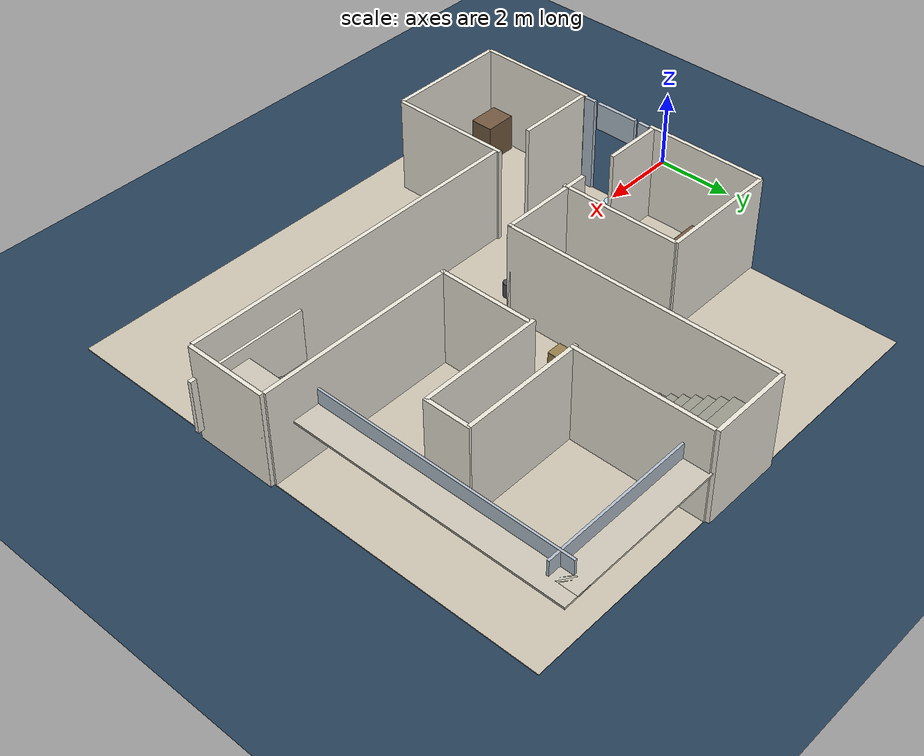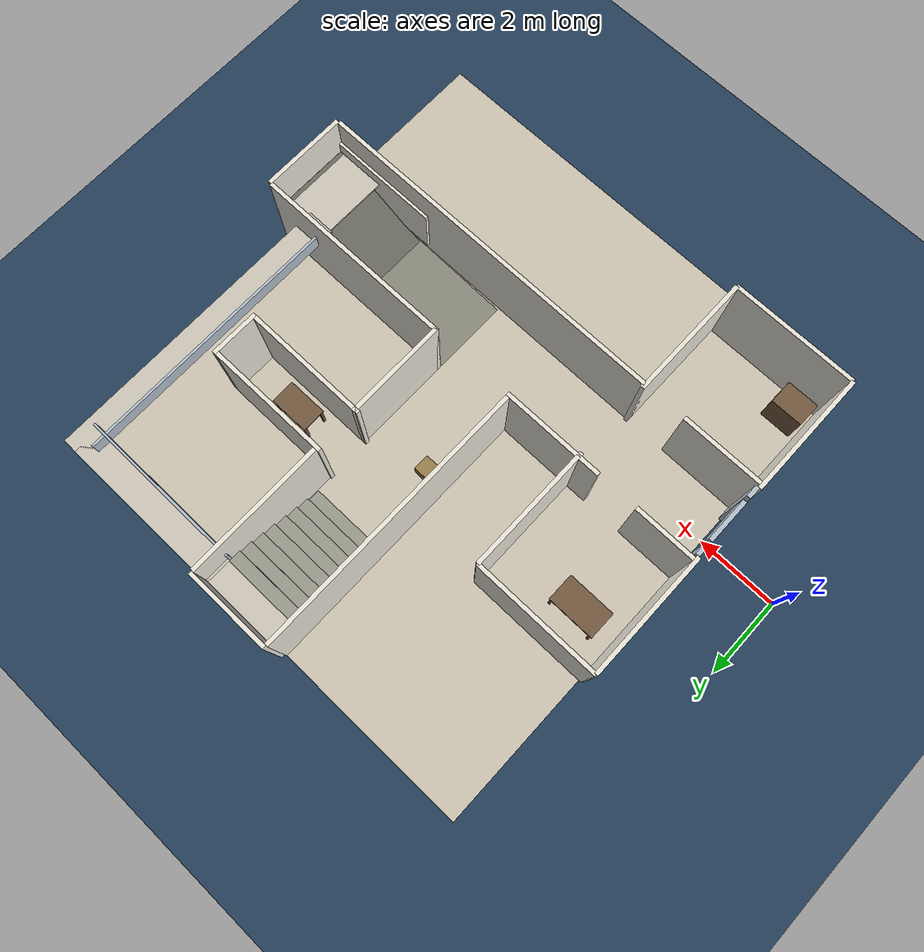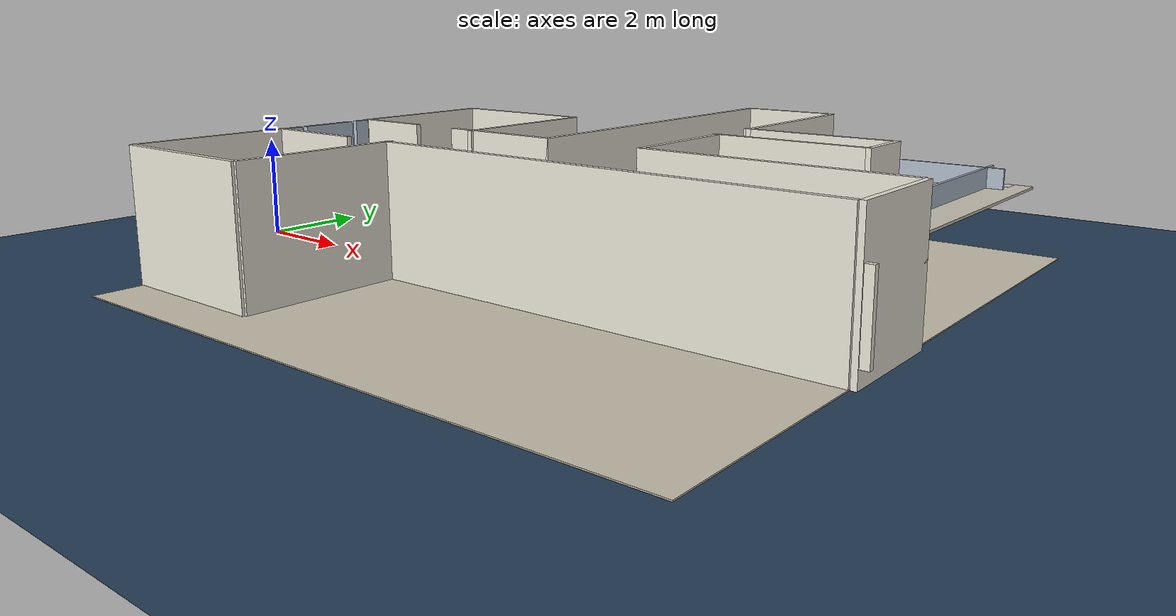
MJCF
<mujoco model="office">
  <statistic center="6 1 1" extent="8"/>

  <visual>
    <headlight diffuse="0.6 0.6 0.6" ambient="0.3 0.3 0.3" specular="0 0 0"/>
    <rgba haze="0.15 0.25 0.35 1"/>
    <global azimuth="-130" elevation="-20" offwidth="1280" offheight="960"/>
  </visual>

  <asset>
    <texture type="skybox" builtin="gradient" rgb1="0.3 0.5 0.7" rgb2="0 0 0" width="512" height="3072"/>
    <texture type="2d" name="groundplane" builtin="checker" mark="edge"
      rgb1="0.2 0.3 0.4" rgb2="0.1 0.2 0.3" markrgb="0.8 0.8 0.8" width="300" height="300"/>
    <texture type="2d" name="office_floor" builtin="checker" mark="none"
      rgb1="0.85 0.82 0.75" rgb2="0.75 0.72 0.65" width="200" height="200"/>
    <material name="groundplane" texture="groundplane" texuniform="true" texrepeat="5 5" reflectance="0.2"/>
    <material name="office_floor" texture="office_floor" texuniform="true" texrepeat="8 8" reflectance="0.1"/>
    <material name="wall" rgba="0.92 0.90 0.85 1" specular="0.1" shininess="0.1"/>
    <material name="wall_accent" rgba="0.7 0.75 0.8 1" specular="0.1" shininess="0.1"/>
    <material name="stairs" rgba="0.6 0.6 0.55 1" specular="0.05"/>
    <material name="ramp" rgba="0.55 0.55 0.50 1" specular="0.05"/>
    <material name="furniture" rgba="0.45 0.35 0.25 1" specular="0.2" shininess="0.3"/>
    <material name="upper_floor" rgba="0.8 0.78 0.72 1" specular="0.1"/>
  </asset>

  <worldbody>
    <light pos="6 2 4" dir="0 0 -1" directional="true"/>
    <light pos="6 2 3" dir="0 0 -1" diffuse="0.3 0.3 0.3" specular="0.1 0.1 0.1"/>
    <geom name="floor" size="0 0 0.05" type="plane" material="groundplane"/>

    <!-- OFFICE FLOOR SLAB (raised 2cm, visual distinction from ground) -->
    <!-- Covers x=[2,14], y=[-5,8] -->
    <geom name="office_slab" type="box" pos="8 1.5 0.01" size="6 6.5 0.01"
      material="office_floor"/>

    <!-- MAIN EAST-WEST CORRIDOR: x=[2,14], y=[-1,1], 2m wide        -->

    <!-- North wall of main corridor (y=1) -->
    <!-- Segment: x=[2,3.5] (west of room 1 door) -->
    <geom name="main_n_wall_w" type="box" pos="2.75 1.05 1.25" size="0.75 0.05 1.25" material="wall"/>
    <!-- Segment: x=[4.5,7] (between room 1 door and north corridor) -->
    <geom name="main_n_wall_mid" type="box" pos="5.75 1.05 1.25" size="1.25 0.05 1.25" material="wall"/>
    <!-- Segment: x=[9,14] (east of north corridor) -->
    <geom name="main_n_wall_e" type="box" pos="11.5 1.05 1.25" size="2.5 0.05 1.25" material="wall"/>

    <!-- South wall of main corridor (y=-1) -->
    <!-- Segment: x=[2,4] (west of room 2 door) -->
    <geom name="main_s_wall_w" type="box" pos="3 -1.05 1.25" size="1 0.05 1.25" material="wall"/>
    <!-- Segment: x=[5,14] (east of room 2 door) -->
    <geom name="main_s_wall_e" type="box" pos="9.5 -1.05 1.25" size="4.5 0.05 1.25" material="wall"/>

    <!-- West wall (entrance) x=2, y=[-1,1] with door gap y=[-0.5,0.5] -->
    <geom name="entrance_wall_s" type="box" pos="2 -0.8 1.25" size="0.05 0.15 1.25" material="wall_accent"/>
    <geom name="entrance_wall_n" type="box" pos="2 0.8 1.25" size="0.05 0.15 1.25" material="wall_accent"/>
    <!-- Door lintel above -->
    <geom name="entrance_lintel" type="box" pos="2 0 2.15" size="0.05 0.55 0.35" material="wall_accent"/>

    <!-- East wall x=14, y=[-1,1] (corridor dead-end, above ramp platform) -->
    <geom name="main_e_wall" type="box" pos="14.05 0 1.25" size="0.05 1.05 1.25" material="wall"/>

    <!-- NORTH-SOUTH CORRIDOR: x=[7,9], y=[1,8], 2m wide             -->

    <!-- West wall (x=7) -->
    <geom name="ns_w_wall" type="box" pos="6.95 4.5 1.25" size="0.05 3.5 1.25" material="wall"/>

    <!-- East wall (x=9) -->
    <!-- Segment: y=[1,3.5] (south of side room door) -->
    <geom name="ns_e_wall_s" type="box" pos="9.05 2.25 1.25" size="0.05 1.25 1.25" material="wall"/>
    <!-- Segment: y=[4.5,8] (north of side room door) -->
    <geom name="ns_e_wall_n" type="box" pos="9.05 6.25 1.25" size="0.05 1.75 1.25" material="wall"/>

    <!-- North wall of corridor (y=8) -->
    <geom name="ns_n_wall" type="box" pos="8 8.05 1.25" size="1.05 0.05 1.25" material="wall"/>

    <!-- ROOM 1 (northwest): x=[2,4.5], y=[1,4]                      -->
    <!-- Door opening on south wall at x=[4.5,5.5], y=1              -->

    <!-- North wall -->
    <geom name="room1_n_wall" type="box" pos="3.5 4.05 1.25" size="1.55 0.05 1.25" material="wall"/>
    <!-- West wall -->
    <geom name="room1_w_wall" type="box" pos="1.95 2.5 1.25" size="0.05 1.55 1.25" material="wall"/>
    <!-- East wall (x=5, partial - connects to corridor north wall) -->
    <geom name="room1_e_wall" type="box" pos="5.05 2.5 1.25" size="0.05 1.55 1.25" material="wall"/>

    <!-- Desk in room 1 -->
    <geom name="desk1_top" type="box" pos="3 3 0.72" size="0.6 0.35 0.02" material="furniture"/>
    <geom name="desk1_leg1" type="box" pos="2.45 2.7 0.35" size="0.03 0.03 0.35" material="furniture"/>
    <geom name="desk1_leg2" type="box" pos="3.55 2.7 0.35" size="0.03 0.03 0.35" material="furniture"/>
    <geom name="desk1_leg3" type="box" pos="2.45 3.3 0.35" size="0.03 0.03 0.35" material="furniture"/>
    <geom name="desk1_leg4" type="box" pos="3.55 3.3 0.35" size="0.03 0.03 0.35" material="furniture"/>

    <!-- ROOM 2 (southwest): x=[2,5], y=[-4,-1]                      -->
    <!-- Door opening on north wall at x=[5,6], y=-1                  -->

    <!-- South wall -->
    <geom name="room2_s_wall" type="box" pos="3.5 -4.05 1.25" size="1.55 0.05 1.25" material="wall"/>
    <!-- West wall -->
    <geom name="room2_w_wall" type="box" pos="1.95 -2.5 1.25" size="0.05 1.55 1.25" material="wall"/>
    <!-- East wall -->
    <geom name="room2_e_wall" type="box" pos="5.05 -2.5 1.25" size="0.05 1.55 1.25" material="wall"/>

    <!-- Shelf/cabinet in room 2 -->
    <geom name="cabinet" type="box" pos="2.5 -3.5 0.5" size="0.4 0.3 0.5" material="furniture"/>

    <!-- SIDE ROOM (east of north corridor): x=[9,12], y=[3.5,4.5]    -->
    <!-- Door at x=9, y=[3.5,4.5]                                    -->

    <geom name="sideroom_n_wall" type="box" pos="10.5 4.55 1.25" size="1.55 0.05 1.25" material="wall"/>
    <geom name="sideroom_s_wall" type="box" pos="10.5 3.45 1.25" size="1.55 0.05 1.25" material="wall"/>
    <geom name="sideroom_e_wall" type="box" pos="12.05 4 1.25" size="0.05 0.6 1.25" material="wall"/>

    <!-- Table in side room -->
    <geom name="table_top" type="box" pos="10.5 4 0.72" size="0.5 0.3 0.02" material="furniture"/>
    <geom name="table_leg1" type="box" pos="10.05 3.75 0.35" size="0.03 0.03 0.35" material="furniture"/>
    <geom name="table_leg2" type="box" pos="10.95 3.75 0.35" size="0.03 0.03 0.35" material="furniture"/>
    <geom name="table_leg3" type="box" pos="10.05 4.25 0.35" size="0.03 0.03 0.35" material="furniture"/>
    <geom name="table_leg4" type="box" pos="10.95 4.25 0.35" size="0.03 0.03 0.35" material="furniture"/>

    <!-- STAIRCASE: north end of N-S corridor, y=[5,7.5]              -->
    <!-- 8 steps, each 0.17m tall, 0.30m deep, going north (+y)       -->
    <!-- Full width of corridor (x=[7,9], 2m wide)                    -->
    <!-- Total rise: 8 * 0.17 = 1.36m                                -->

    <geom name="step1" type="box" pos="8 5.15 0.085" size="0.95 0.15 0.085" material="stairs"/>
    <geom name="step2" type="box" pos="8 5.45 0.17"  size="0.95 0.15 0.17"  material="stairs"/>
    <geom name="step3" type="box" pos="8 5.75 0.255" size="0.95 0.15 0.255" material="stairs"/>
    <geom name="step4" type="box" pos="8 6.05 0.34"  size="0.95 0.15 0.34"  material="stairs"/>
    <geom name="step5" type="box" pos="8 6.35 0.425" size="0.95 0.15 0.425" material="stairs"/>
    <geom name="step6" type="box" pos="8 6.65 0.51"  size="0.95 0.15 0.51"  material="stairs"/>
    <geom name="step7" type="box" pos="8 6.95 0.595" size="0.95 0.15 0.595" material="stairs"/>
    <geom name="step8" type="box" pos="8 7.25 0.68"  size="0.95 0.15 0.68"  material="stairs"/>

    <!-- Upper platform at top of stairs (z=0.68*2? No - top of step8 is at 0.68+0.68? No.) -->
    <!-- step8 center z=0.68, half-height=0.68, so top = 1.36m -->
    <!-- Upper landing: y=[7.4,8], at z=1.36 -->
    <geom name="upper_landing" type="box" pos="8 7.725 0.68" size="0.95 0.325 0.68" material="upper_floor"/>

    <!-- RAMP: east end of main corridor, x=[11.5,14], y=[-1,1]      -->
    <!-- Goes from z=0 (at x=11.5) up to z=1.36 (at x=14)            -->
    <!-- Rise=1.36, Run=2.5, angle=atan(1.36/2.5)=28.6°              -->
    <!-- Slope length = sqrt(2.5² + 1.36²) = 2.846m                  -->

    <!-- Ramp surface (rotated box) -->
    <!-- Center: x=12.75, z=0.68, y=0 -->
    <!-- angle = 28.6°, half-angle = 14.3° = 0.2496 rad -->
    <!-- quat around Y: [cos(a/2), 0, sin(a/2), 0] -->
    <!-- For -28.6° (tilt +x end up): cos(-14.3°)=0.969, sin(-14.3°)=-0.247 -->
    <geom name="ramp_surface" type="box" pos="12.75 0 0.68"
      size="1.423 0.95 0.05"
      quat="0.969 0 -0.247 0"
      material="ramp"/>

    <!-- Ramp side walls -->
    <geom name="ramp_wall_n" type="box" pos="11.75 0.98 1.0"
      size="0.5 0.05 0.7"
      material="wall"/>
    <geom name="ramp_wall_s" type="box" pos="12.75 -0.98 1.0"
      size="1.5 0.05 0.7"
      material="wall"/>

    <!-- Upper platform at top of ramp (connecting ramp top to east wall) -->
    <!-- At z=1.36, small landing -->
    <geom name="ramp_top_platform" type="box" pos="13.4 0 1.335"
      size="0.65 0.95 0.025" material="upper_floor"/>

    <!-- UPPER HALLWAY: connects stair landing to ramp top             -->
    <!-- Runs along north wall at z=1.36, x=[9,13.5], y=[7,8]        -->
    <!-- This is a catwalk/mezzanine along the east and north side    -->

    <!-- Upper floor slab from stairs heading east -->
    <geom name="upper_hall_1" type="box" pos="11 7.7 1.335"
      size="2.05 0.35 0.025" material="upper_floor"/>

    <!-- Upper floor turning south toward ramp -->
    <geom name="upper_hall_2" type="box" pos="13.05 4.35 1.335"
      size="0.35 3.7 0.025" material="upper_floor"/>

    <!-- Connect to ramp top -->
    <geom name="upper_hall_3" type="box" pos="13.4 1 1.335"
      size="0.7 0.05 0.025" material="upper_floor"/>

    <!-- Upper hallway railings (low walls, 0.4m above upper floor) -->
    <geom name="railing_1" type="box" pos="11 7.35 1.56"
      size="2.05 0.03 0.2" material="wall_accent"/>
    <geom name="railing_2" type="box" pos="12.7 4.35 1.56"
      size="0.03 3.35 0.2" material="wall_accent"/>

    <!-- INCLINED CORRIDOR SECTION: gentle slope in main corridor     -->
    <!-- x=[9,11.5], slight upward slope toward the ramp              -->
    <!-- Rise = 0 to ~0.15m over 2.5m, angle ≈ 3.4°                  -->

    <!-- Gentle ramp leading to the steep ramp -->
    <!-- angle=3.4°, half=1.7°=0.0297rad, cos=0.9996, sin=-0.0297 -->
    <geom name="gentle_slope" type="box" pos="10.25 0 0.06"
      size="1.25 0.95 0.04"
      quat="0.9996 0 -0.0297 0"
      material="ramp"/>

    <!-- OBSTACLES / FURNITURE IN CORRIDORS                           -->

    <!-- Water cooler in main corridor -->
    <geom name="water_cooler" type="cylinder" pos="3 0.7 0.4" size="0.15 0.4"
      rgba="0.7 0.85 0.9 1"/>

    <!-- Trash bin near intersection -->
    <geom name="trash_bin" type="cylinder" pos="6.5 0.6 0.2" size="0.12 0.2"
      rgba="0.3 0.3 0.35 1"/>

    <!-- Box/crate in north corridor -->
    <geom name="crate" type="box" pos="7.5 3 0.2" size="0.2 0.2 0.2"
      rgba="0.6 0.5 0.3 1"/>

  </worldbody>
</mujoco>
